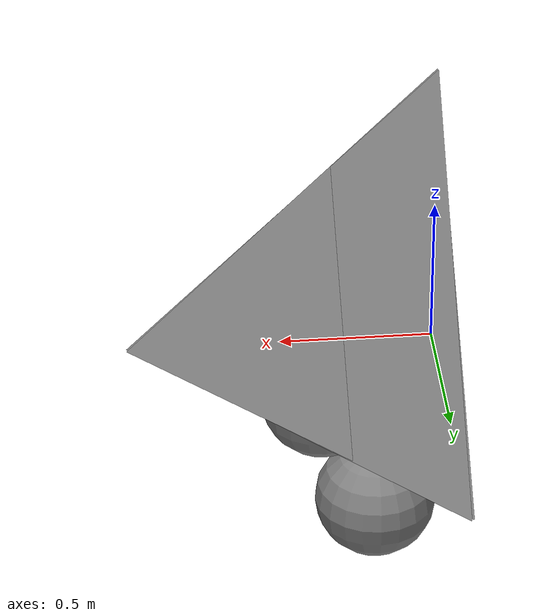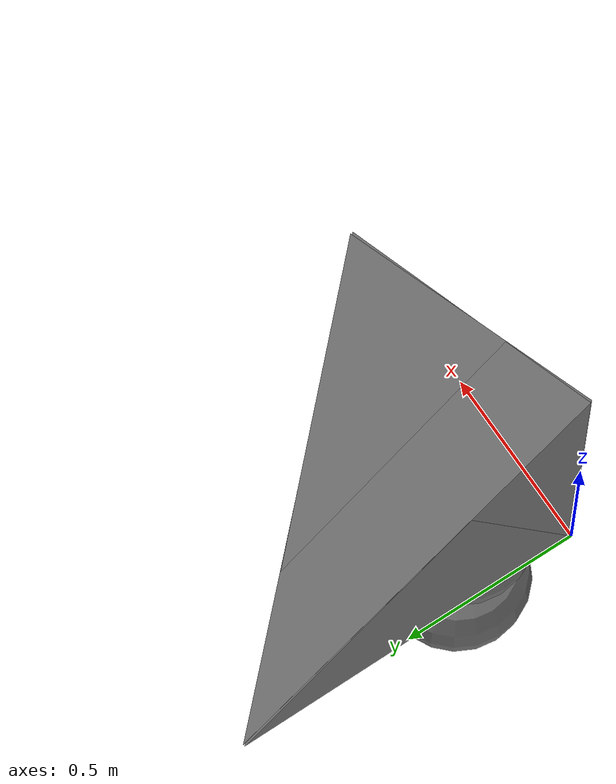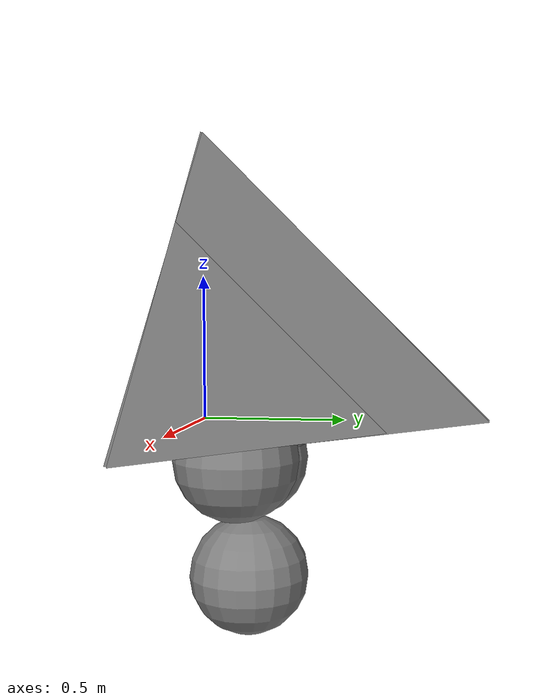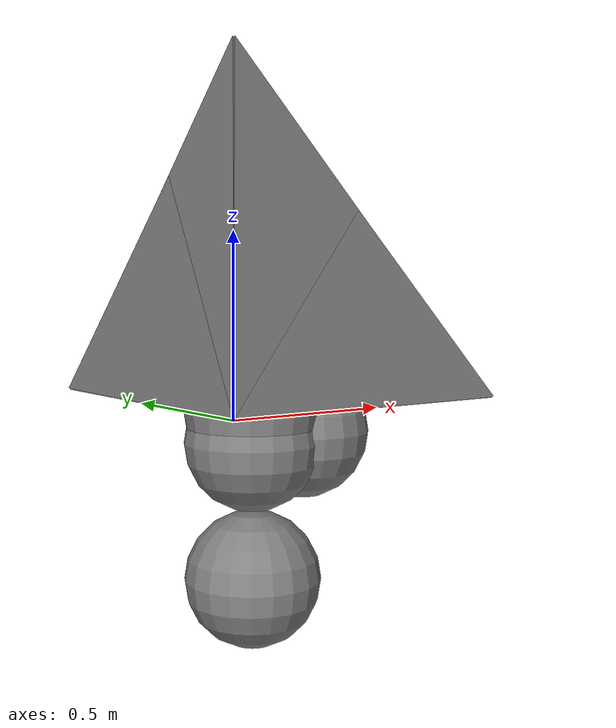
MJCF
<mujoco model="contact_route_sphere_mesh">
  <option gravity="0 0 0"/>
  <asset>
    <mesh name="tetra" vertex="0 0 0 1 0 0 0 1 0 0 0 1"
          face="0 2 1 0 1 3 0 3 2 1 2 3"/>
  </asset>
  <contact>
    <pair geom1="sphere_no_contact" geom2="mesh_no_contact"/>
    <pair geom1="sphere_shallow" geom2="mesh_shallow"/>
    <pair geom1="sphere_deep" geom2="mesh_deep"/>
    <pair geom1="sphere_off_axis" geom2="mesh_off_axis"/>
  </contact>
  <worldbody>
    <body name="sphere_no_contact" pos="0.2 0.2 -0.5">
      <freejoint/>
      <inertial pos="0 0 0" mass="1" diaginertia="1 1 1"/>
      <geom name="sphere_no_contact" type="sphere" size="0.2"/>
    </body>
    <body name="mesh_no_contact">
      <freejoint/>
      <inertial pos="0 0 0" mass="1" diaginertia="1 1 1"/>
      <geom name="mesh_no_contact" type="mesh" mesh="tetra"/>
    </body>
    <body name="sphere_shallow" pos="0.2 0.2 -0.1">
      <freejoint/>
      <inertial pos="0 0 0" mass="1" diaginertia="1 1 1"/>
      <geom name="sphere_shallow" type="sphere" size="0.2"/>
    </body>
    <body name="mesh_shallow">
      <freejoint/>
      <inertial pos="0 0 0" mass="1" diaginertia="1 1 1"/>
      <geom name="mesh_shallow" type="mesh" mesh="tetra"/>
    </body>
    <body name="sphere_deep" pos="0.2 0.2 -0.01">
      <freejoint/>
      <inertial pos="0 0 0" mass="1" diaginertia="1 1 1"/>
      <geom name="sphere_deep" type="sphere" size="0.2"/>
    </body>
    <body name="mesh_deep">
      <freejoint/>
      <inertial pos="0 0 0" mass="1" diaginertia="1 1 1"/>
      <geom name="mesh_deep" type="mesh" mesh="tetra"/>
    </body>
    <body name="sphere_off_axis" pos="0.38 0.2 -0.08">
      <freejoint/>
      <inertial pos="0 0 0" mass="1" diaginertia="1 1 1"/>
      <geom name="sphere_off_axis" type="sphere" size="0.2"/>
    </body>
    <body name="mesh_off_axis" euler="0.3 0.2 0.4">
      <freejoint/>
      <inertial pos="0 0 0" mass="1" diaginertia="1 1 1"/>
      <geom name="mesh_off_axis" type="mesh" mesh="tetra"/>
    </body>
  </worldbody>
</mujoco>
